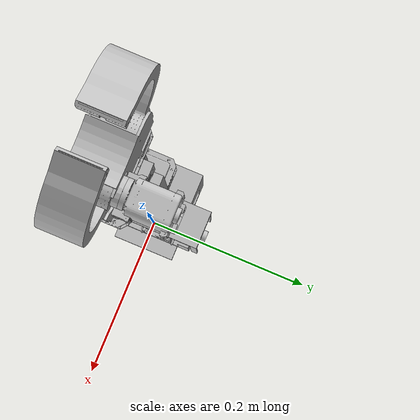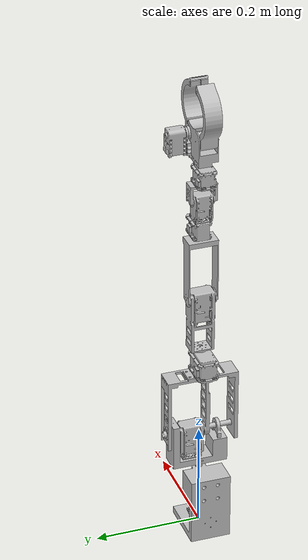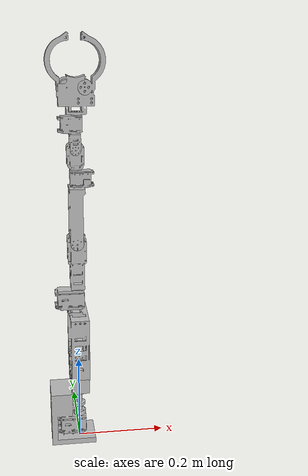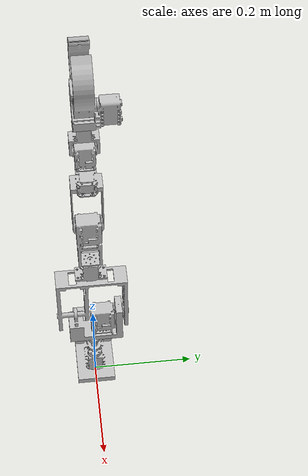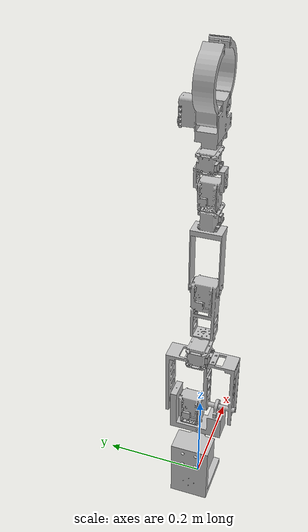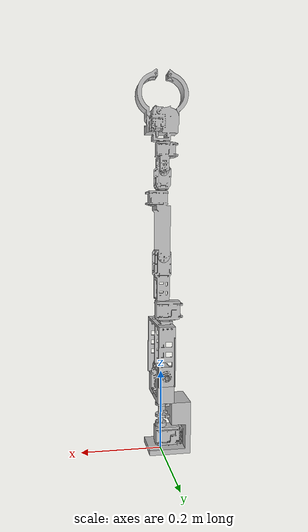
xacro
<?xml version="1.0" ?>
<robot xmlns:xacro="http://www.ros.org/wiki/xacro" name="finalarm_description">
  <xacro:arg name="use_gazebo" default="false" />

  <xacro:if value="$(arg use_gazebo)">
    <!-- the namespace of controller manager should be the same as the spawner -->
    <gazebo>
      <plugin name="gazebo_ros_control" filename="libgazebo_ros_control.so">
      <robotSimType>gazebo_ros_control/DefaultRobotHWSim</robotSimType>
      </plugin>
    </gazebo>

    <link name="root">
      <visual>
      <origin xyz="0 0 0" rpy="0 0 0" />
      <geometry>
          <box size="0 0 0" />
      </geometry>
      </visual>
      <collision>
      <origin xyz="0 0 0" rpy="0 0 0" />
      <geometry>
          <box size="0 0 0" />
      </geometry>
      </collision>
    </link>

    <!-- Used for fixing robot to Gazebo 'base_link' -->
    <link name="world" />
    <joint name="connect_root_and_world" type="fixed">
      <parent link="world" />
      <child link="root" />
      <axis xyz="0 0 0" />
      <origin xyz="0 0 0" rpy="0 0 0" />
    </joint>

    <joint name="root_to_base_link" type="fixed">
      <parent link="root" />
      <child link="base_link" />
      <axis xyz="0 0 0" />
      <origin xyz="0 0 0" rpy="0 0 0" />
    </joint>
  </xacro:if>

  <link name="base_link">
    <inertial>
      <origin
        xyz="-0.0350973236171887 2.50206915783369E-06 0.065743599294131"
        rpy="0 0 0"
      />
      <mass value="1.10920648420033" />
      <inertia
        ixx="0.00259388526"
        ixy="-0.00000005038"
        ixz="-0.00033538856"
        iyy="0.00279542583"
        iyz="-0.00000008121"
        izz="0.00116940616"
      />
    </inertial>
    <visual>
      <origin xyz="0 0 0" rpy="0 0 0" />
      <geometry>
        <mesh filename="package://finalarm_description/meshes/base_link.STL" />
      </geometry>
      <material name="">
        <color rgba="0.752941176470588 0.752941176470588 0.752941176470588 1" />
      </material>
    </visual>
    <collision>
      <origin xyz="0 0 0" rpy="0 0 0" />
      <geometry>
        <mesh filename="package://finalarm_description/meshes/base_link.STL" />
      </geometry>
    </collision>
  </link>
  <link name="link_2">
    <inertial>
      <origin
        xyz="-6.93463695862484E-06 0.00621364138420952 -0.106231333331331"
        rpy="0 0 0"
      />
      <mass value="0.471538287399183" />
      <inertia
        ixx="0.00096626194"
        ixy="-0.00000006431"
        ixz="0.00000032990"
        iyy="0.00575735994"
        iyz="-0.00039309867"
        izz="0.00066079574"
      />
    </inertial>
    <visual>
      <origin xyz="0 0 0" rpy="0 0 0" />
      <geometry>
        <mesh filename="package://finalarm_description/meshes/link_2.STL" />
      </geometry>
      <material name="">
        <color rgba="0.752941176470588 0.752941176470588 0.752941176470588 1" />
      </material>
    </visual>
    <collision>
      <origin xyz="0 0 0" rpy="0 0 0" />
      <geometry>
        <mesh filename="package://finalarm_description/meshes/link_2.STL" />
      </geometry>
    </collision>
  </link>
  <joint name="joint_1" type="revolute">
    <origin xyz="0 0 0.0622" rpy="3.1416 0 3.1416" />
    <parent link="base_link" />
    <child link="link_2" />
    <axis xyz="0 0 -1" />
    <limit lower="-3.14" upper="3.14" effort="6" velocity="2.0" />
    <dynamics damping="0.5" />
  </joint>
  <link name="link_3">
    <inertial>
      <origin
        xyz="0.00793341258344955 -0.110904264599027 -0.00575400019431305"
        rpy="0 0 0"
      />
      <mass value="0.176545926561924" />
      <inertia
        ixx="0.00067487030"
        ixy="-0.00005184685"
        ixz="-0.00000255096"
        iyy="0.00024791507"
        iyz="0.00002448920"
        izz="0.000052259169"
      />
    </inertial>
    <visual>
      <origin xyz="0 0 0" rpy="0 0 0" />
      <geometry>
        <mesh filename="package://finalarm_description/meshes/link_3.STL" />
      </geometry>
      <material name="">
        <color rgba="0.752941176470588 0.752941176470588 0.752941176470588 1" />
      </material>
    </visual>
    <collision>
      <origin xyz="0 0 0" rpy="0 0 0" />
      <geometry>
        <mesh filename="package://finalarm_description/meshes/link_3.STL" />
      </geometry>
    </collision>
  </link>
  <joint name="joint_2" type="revolute">
    <origin xyz="0 -0.00824 -0.14225" rpy="1.5708 0 0" />
    <parent link="link_2" />
    <child link="link_3" />
    <axis xyz="0 0 1" />
    <limit lower="-2.189" upper="0.0" effort="6" velocity="2.0" />
    <dynamics damping="0.5" />
  </joint>
  <link name="link_4">
    <inertial>
      <origin
        xyz="-1.73545194991076E-06 3.75572226324616E-05 -0.0816772034389157"
        rpy="0 0 0"
      />
      <mass value="0.104087748544112" />
      <inertia
        ixx="0.00012288342"
        ixy="-0.00000000216"
        ixz="0.00000001618"
        iyy="0.00011093520"
        iyz="0.00000039768"
        izz="0.00002956657"
      />
    </inertial>
    <visual>
      <origin xyz="0 0 0" rpy="0 0 0" />
      <geometry>
        <mesh filename="package://finalarm_description/meshes/link_4.STL" />
      </geometry>
      <material name="">
        <color rgba="0.752941176470588 0.752941176470588 0.752941176470588 1" />
      </material>
    </visual>
    <collision>
      <origin xyz="0 0 0" rpy="0 0 0" />
      <geometry>
        <mesh filename="package://finalarm_description/meshes/link_4.STL" />
      </geometry>
    </collision>
  </link>
  <joint name="joint_3" type="revolute">
    <origin xyz="0 -0.1721 -0.00754" rpy="-1.5708 0 0" />
    <parent link="link_3" />
    <child link="link_4" />
    <axis xyz="0 0 -1" />
    <limit lower="-3.14" upper="3.14" effort="6" velocity="2.0" />
    <dynamics damping="0.5" />
  </joint>
  <link name="link_5">
    <inertial>
      <origin
        xyz="-0.00688423968276193 0.114612027416276 -0.000499999595380635"
        rpy="0 0 0"
      />
      <mass value="0.0763995324256172" />
      <inertia
        ixx="0.00014398020"
        ixy="-0.00001235082"
        ixz="0.00000001592"
        iyy="0.00003078676"
        iyz="0.00000000000"
        izz="0.00013784036"
      />
    </inertial>
    <visual>
      <origin xyz="0 0 0" rpy="0 0 0" />
      <geometry>
        <mesh filename="package://finalarm_description/meshes/link_5.STL" />
      </geometry>
      <material name="">
        <color rgba="0.752941176470588 0.752941176470588 0.752941176470588 1" />
      </material>
    </visual>
    <collision>
      <origin xyz="0 0 0" rpy="0 0 0" />
      <geometry>
        <mesh filename="package://finalarm_description/meshes/link_5.STL" />
      </geometry>
    </collision>
  </link>
  <joint name="joint_4" type="revolute">
    <origin xyz="0 0 -0.11" rpy="-1.5708 0 0" />
    <parent link="link_4" />
    <child link="link_5" />
    <axis xyz="0 0 -1" />
    <limit lower="-2.189" upper="2.188" effort="6" velocity="2.0" />
    <dynamics damping="0.5" />
  </joint>
  <link name="link_6">
    <inertial>
      <origin
        xyz="1.38984233255535E-05 -3.02219879037557E-05 -0.0318489971663578"
        rpy="0 0 0"
      />
      <mass value="0.0455105599924779" />
      <inertia
        ixx="0.00001425862"
        ixy="0.00000000002"
        ixz="0.00000001440"
        iyy="0.00001225892"
        iyz="-0.00000018076"
        izz="0.00000782673"
      />
    </inertial>
    <visual>
      <origin xyz="0 0 0" rpy="0 0 0" />
      <geometry>
        <mesh filename="package://finalarm_description/meshes/link_6.STL" />
      </geometry>
      <material name="">
        <color rgba="0.752941176470588 0.752941176470588 0.752941176470588 1" />
      </material>
    </visual>
    <collision>
      <origin xyz="0 0 0" rpy="0 0 0" />
      <geometry>
        <mesh filename="package://finalarm_description/meshes/link_6.STL" />
      </geometry>
    </collision>
  </link>
  <joint name="joint_5" type="revolute">
    <origin xyz="0 0.1566 -0.0005" rpy="-1.5708 0 3.1416" />
    <parent link="link_5" />
    <child link="link_6" />
    <axis xyz="0 0 -1" />
    <limit lower="-3.14" upper="3.14" effort="6" velocity="2.0" />
    <dynamics damping="0.5" />
  </joint>
  <link name="link_7">
    <inertial>
      <origin
        xyz="-0.00629355961550483 0.0442792267246015 0.000326216217654773"
        rpy="0 0 0"
      />
      <mass value="0.0556423949669392" />
      <inertia
        ixx="0.00002339630"
        ixy="-0.00000217744"
        ixz="0.00000002669"
        iyy="0.00001609019"
        iyz="-0.00000018683"
        izz="0.00002459523"
      />
    </inertial>
    <visual>
      <origin xyz="0 0 0" rpy="0 0 0" />
      <geometry>
        <mesh filename="package://finalarm_description/meshes/link_7.STL" />
      </geometry>
      <material name="">
        <color rgba="0.752941176470588 0.752941176470588 0.752941176470588 1" />
      </material>
    </visual>
    <collision>
      <origin xyz="0 0 0" rpy="0 0 0" />
      <geometry>
        <mesh filename="package://finalarm_description/meshes/link_7.STL" />
      </geometry>
    </collision>
  </link>
  <joint name="joint_6" type="revolute">
    <origin xyz="0 0 -0.044805" rpy="-1.5708 0 0" />
    <parent link="link_6" />
    <child link="link_7" />
    <axis xyz="0 0 1" />
    <limit lower="-2.02" upper="1.92" effort="6" velocity="2.0" />
    <dynamics damping="0.5" />
  </joint>
  <link name="link_8">
    <inertial>
      <origin xyz="-0.000582 0.01567 -0.03648" rpy="0 0 0" />
      <mass value="0.11892" />
      <inertia
        ixx="0.00009442066"
        ixy="-0.00002130242"
        ixz="0.00000443479"
        iyy="0.00007414341"
        iyz="-0.00001347108"
        izz="0.00009696489"
      />
    </inertial>
    <visual>
      <origin xyz="0 0 0" rpy="0 0 0" />
      <geometry>
        <mesh filename="package://finalarm_description/meshes/link_8.STL" />
      </geometry>
      <material name="">
        <color rgba="0.752941176470588 0.752941176470588 0.752941176470588 1" />
      </material>
    </visual>
    <collision>
      <origin xyz="0 0 0" rpy="0 0 0" />
      <geometry>
        <mesh filename="package://finalarm_description/meshes/link_8.STL" />
      </geometry>
    </collision>
  </link>
  <joint name="joint_7" type="revolute">
    <origin xyz="0.0035 0.068995 0.00025" rpy="-1.5708 0 3.1416" />
    <parent link="link_7" />
    <child link="link_8" />
    <axis xyz="0 0 -1" />
    <limit lower="-3.14" upper="3.14" effort="6" velocity="2.0" />
    <dynamics damping="0.5" />
  </joint>
  <link name="link_9">
    <inertial>
      <origin
        xyz="0.0330748692850015 -0.0156609082500656 -0.000838888003525384"
        rpy="0 0 0"
      />
      <mass value="0.0633522380056329" />
      <inertia
        ixx="0.00002229791"
        ixy="-0.00001713184"
        ixz="0.00000102093"
        iyy="0.00008811855"
        iyz="-0.00000048759"
        izz="0.00009857025"
      />
    </inertial>
    <visual>
      <origin xyz="0 0 0" rpy="0 0 0" />
      <geometry>
        <mesh filename="package://finalarm_description/meshes/link_9.STL" />
      </geometry>
      <material name="">
        <color rgba="0.752941176470588 0.752941176470588 0.752941176470588 1" />
      </material>
    </visual>
    <collision>
      <origin xyz="0 0 0" rpy="0 0 0" />
      <geometry>
        <mesh filename="package://finalarm_description/meshes/link_9.STL" />
      </geometry>
    </collision>
  </link>
  <joint name="joint_8" type="revolute">
    <origin xyz="-0.0174 0 -0.057005" rpy="1.5708 1.5708 0" />
    <parent link="link_8" />
    <child link="link_9" />
    <axis xyz="0 0 1" />
    <limit lower="-3.14" upper="3.14" effort="6" velocity="2.0" />
    <dynamics damping="0.5" />
  </joint>
  <link name="link_10">
    <inertial>
      <origin
        xyz="0.0338709492936103 0.0160630015014153 -0.000269069197496835"
        rpy="0 0 0"
      />
      <mass value="0.0618364235211619" />
      <inertia
        ixx="0.00002129955"
        ixy="0.00001626282"
        ixz="-0.00000001937"
        iyy="0.00008586701"
        iyz="-0.00000001339"
        izz="0.00009640957"
      />
    </inertial>
    <visual>
      <origin xyz="0 0 0" rpy="0 0 0" />
      <geometry>
        <mesh filename="package://finalarm_description/meshes/link_10.STL" />
      </geometry>
      <material name="">
        <color rgba="0.752941176470588 0.752941176470588 0.752941176470588 1" />
      </material>
    </visual>
    <collision>
      <origin xyz="0 0 0" rpy="0 0 0" />
      <geometry>
        <mesh filename="package://finalarm_description/meshes/link_10.STL" />
      </geometry>
    </collision>
  </link>
  <joint name="joint_9" type="revolute">
    <origin xyz="0.0186 0 -0.056505" rpy="1.5708 1.5708 0" />
    <parent link="link_8" />
    <child link="link_10" />
    <axis xyz="0 0 1" />
    <limit lower="-3.14" upper="3.14" effort="6" velocity="2.0" />
    <dynamics damping="0.5" />
  </joint>
  <link name="link_eef" />
  <joint name="joint_eef" type="fixed">
    <origin xyz="0 0 -0.15225" rpy="3.1416 0 3.1416" />
    <parent link="link_8" />
    <child link="link_eef" />
    <axis xyz="0 0 0" />
  </joint>

  <xacro:if value="$(arg use_gazebo)">
    <xacro:macro name="static_no_collide" params="reference">
      <gazebo reference="${reference}">
        <turnGravityOff>False</turnGravityOff>
        <selfCollide>False</selfCollide>
      </gazebo>
    </xacro:macro>

    <xacro:static_no_collide reference="base_link" />
    <xacro:static_no_collide reference="link_1" />
    <xacro:static_no_collide reference="link_2" />
    <xacro:static_no_collide reference="link_3" />
    <xacro:static_no_collide reference="link_4" />
    <xacro:static_no_collide reference="link_5" />
    <xacro:static_no_collide reference="link_6" />
    <xacro:static_no_collide reference="link_7" />
    <xacro:static_no_collide reference="link_8" />
    <xacro:static_no_collide reference="link_9" />
    <xacro:static_no_collide reference="link_10" />

    <xacro:macro name="joint_implicit_damper" params="reference">
      <gazebo reference="${reference}">
        <implicitSpringDamper>True</implicitSpringDamper>
      </gazebo>
    </xacro:macro>

    <xacro:joint_implicit_damper reference="joint_1" />
    <xacro:joint_implicit_damper reference="joint_2" />
    <xacro:joint_implicit_damper reference="joint_3" />
    <xacro:joint_implicit_damper reference="joint_4" />
    <xacro:joint_implicit_damper reference="joint_5" />
    <xacro:joint_implicit_damper reference="joint_6" />
    <xacro:joint_implicit_damper reference="joint_7" />
    <xacro:joint_implicit_damper reference="joint_8" />
    <xacro:joint_implicit_damper reference="joint_9" />

    <xacro:macro name="transmission" params="name joint actuator">
      <transmission name="${name}">
        <type>transmission_interface/SimpleTransmission</type>
        <joint name="${joint}">
          <hardwareInterface
          >hardware_interface/PositionJointInterface</hardwareInterface>
        </joint>
        <actuator name="${actuator}">
          <hardwareInterface
          >hardware_interface/PositionJointInterface</hardwareInterface>
          <mechanicalReduction>1</mechanicalReduction>
        </actuator>
      </transmission>
    </xacro:macro>

    <!-- transmission that link actuators to joints-->
    <xacro:transmission name="tran1" joint="joint_1" actuator="motor_1" />
    <xacro:transmission name="tran2" joint="joint_2" actuator="motor_2" />
    <xacro:transmission name="tran3" joint="joint_3" actuator="motor_3" />
    <xacro:transmission name="tran4" joint="joint_4" actuator="motor_4" />
    <xacro:transmission name="tran5" joint="joint_5" actuator="motor_5" />
    <xacro:transmission name="tran6" joint="joint_6" actuator="motor_6" />
    <xacro:transmission name="tran7" joint="joint_7" actuator="motor_7" />
    <xacro:transmission name="tran8" joint="joint_8" actuator="motor_8" />
    <xacro:transmission name="tran9" joint="joint_9" actuator="motor_9" />
  </xacro:if>
</robot>
